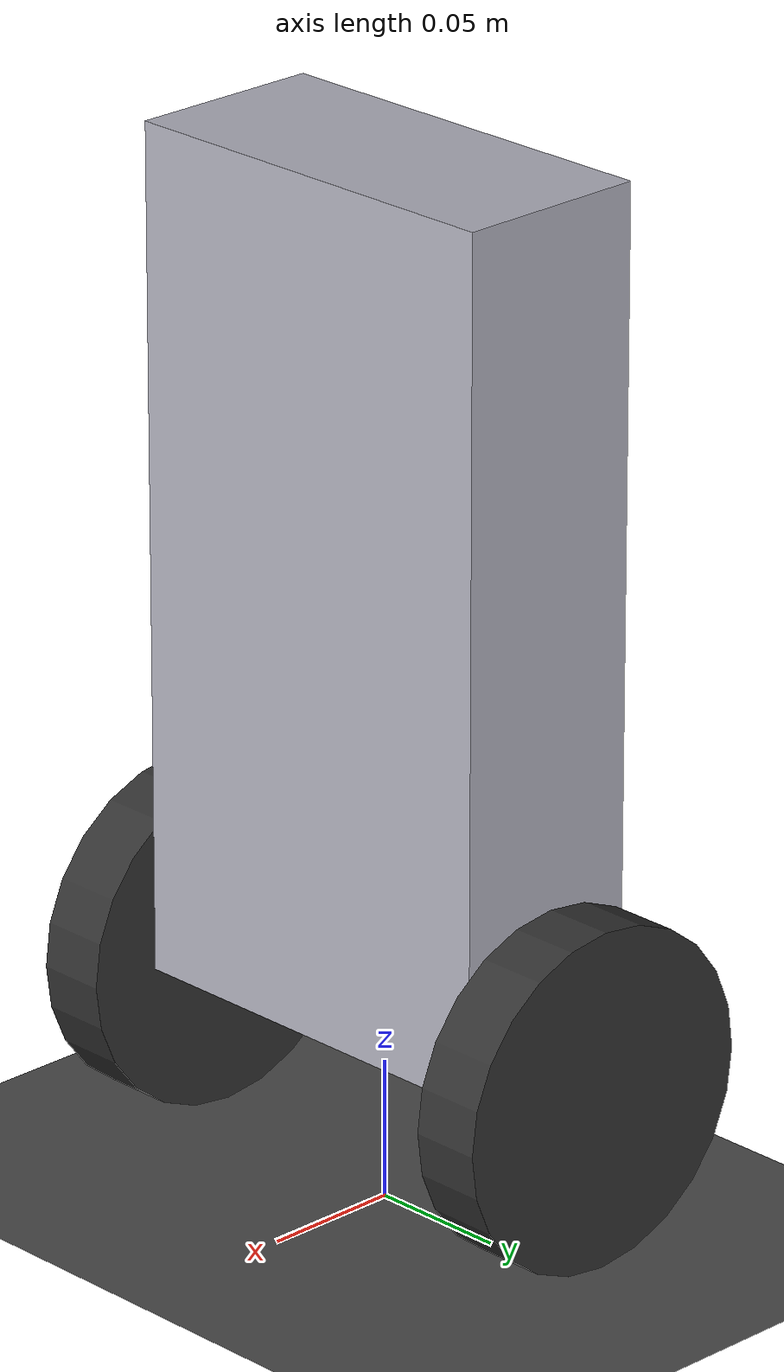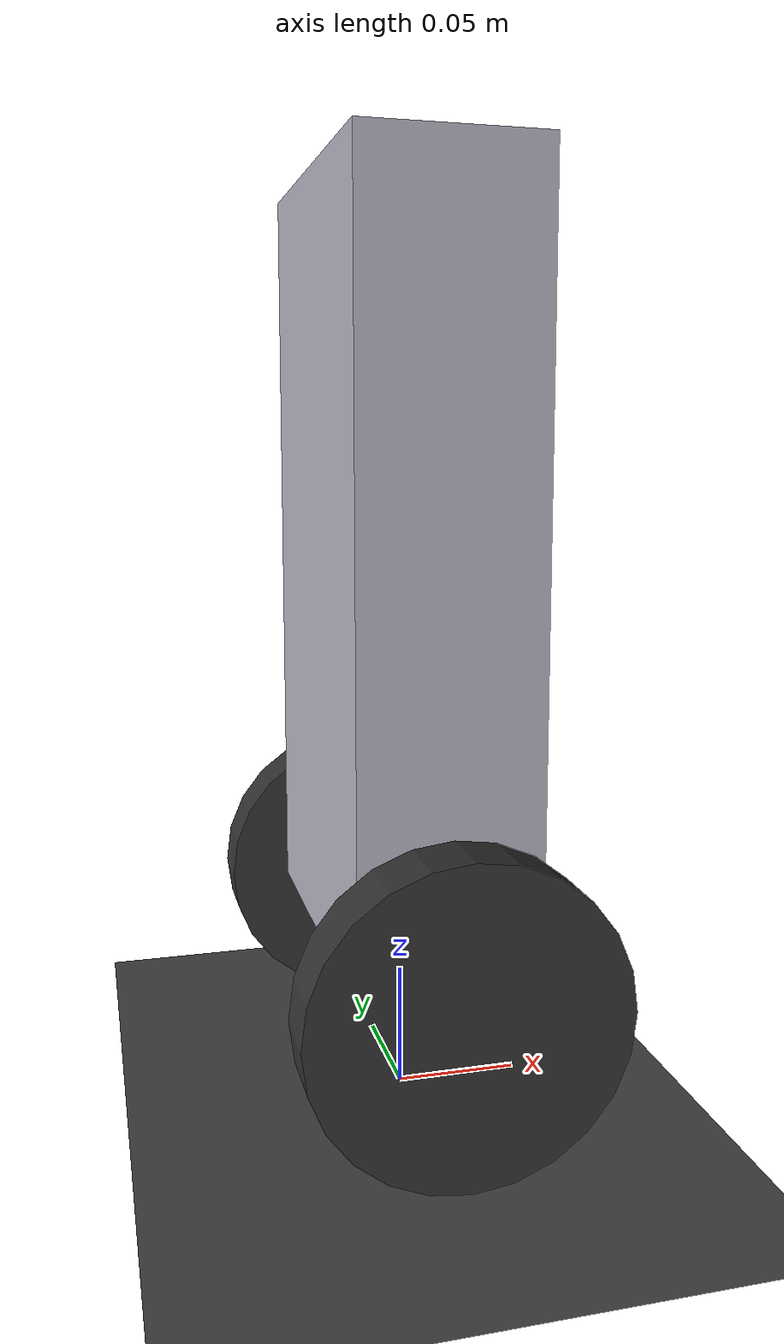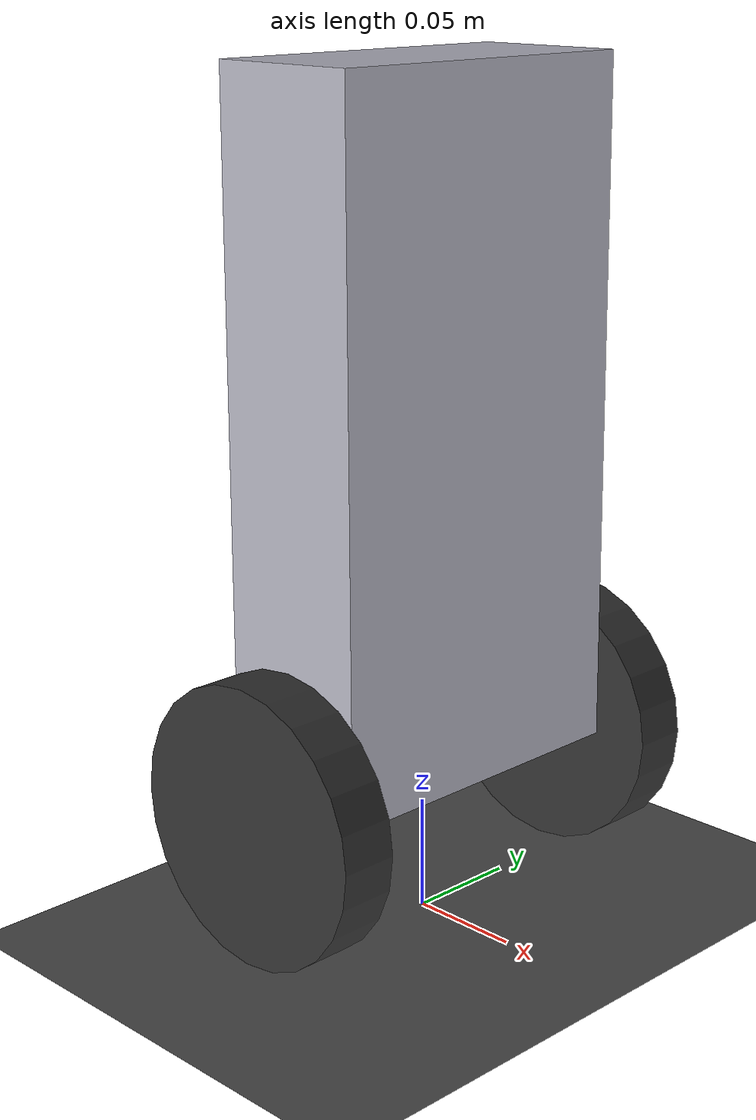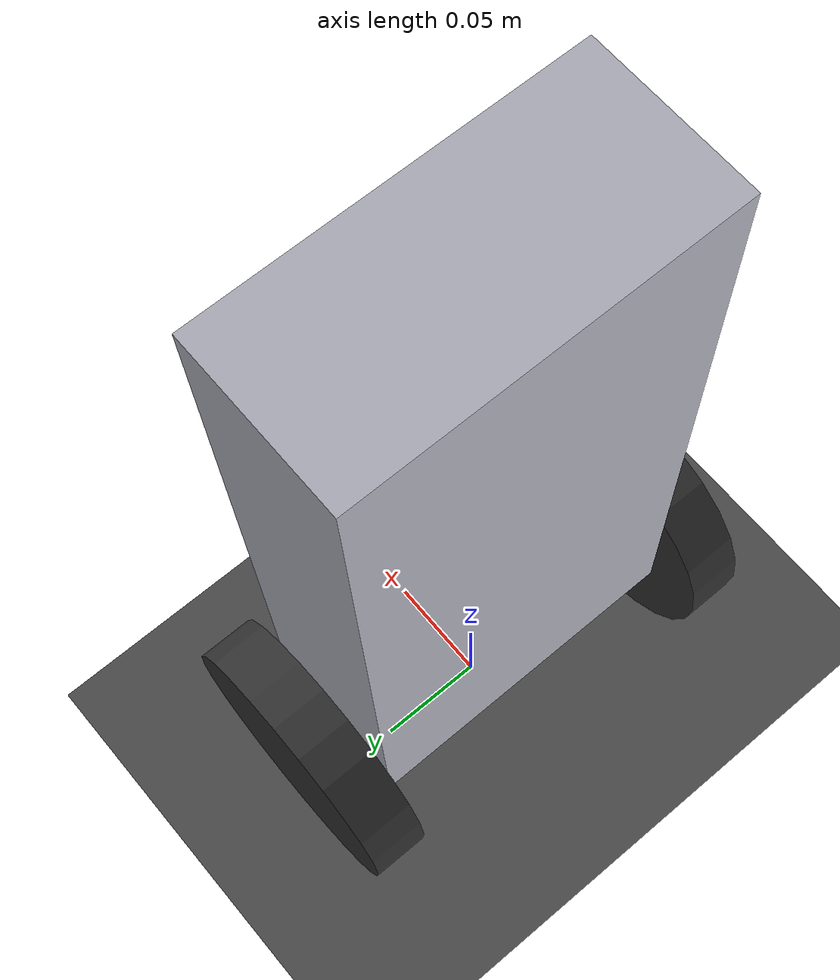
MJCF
<?xml version="1.0" encoding="utf-8"?>
<mujoco model="segby_v1">
  <compiler angle="radian" autolimits="true"/>

  <option timestep="0.002" gravity="0 0 -9.81"/>

  <default>
    <geom contype="1" conaffinity="1" friction="1 0.05 0.01"/>
  </default>

  <worldbody>
    <light pos="2 0 5" dir="0 0 -1" diffuse="1 1 1"/>
    <geom name="ground" type="plane" pos="0 0 0" size="20 20 0.1"
          rgba="0.30 0.30 0.30 1"/>

    <body name="chassis" pos="0 0 0.22">
      <freejoint name="root"/>
      <site name="imu" pos="0 0 0" size="0.01"/>

      <!-- chassis: 0.07 x 0.15 x 0.30 box, 0.8 kg (half-sizes below). -->
      <geom name="chassis_geom" type="box" size="0.035 0.075 0.15"
            mass="0.8" rgba="0.7 0.7 0.75 1"/>

      <!-- left wheel: hinge about +Y, cylinder r=0.06 w=0.025 (half-len 0.0125). -->
      <body name="wheel_l" pos="0 0.0895 -0.15">
        <joint name="wheel_l_joint" type="hinge" axis="0 1 0" damping="0.01"/>
        <geom name="wheel_l_geom" type="cylinder" size="0.06 0.0125"
              quat="0.7071068 0.7071068 0 0" mass="0.12" rgba="0.2 0.2 0.2 1"/>
      </body>

      <!-- right wheel: the mirror of the left. -->
      <body name="wheel_r" pos="0 -0.0895 -0.15">
        <joint name="wheel_r_joint" type="hinge" axis="0 1 0" damping="0.01"/>
        <geom name="wheel_r_geom" type="cylinder" size="0.06 0.0125"
              quat="0.7071068 0.7071068 0 0" mass="0.12" rgba="0.2 0.2 0.2 1"/>
      </body>
    </body>
  </worldbody>

  <actuator>
    <motor name="left_wheel_motor" joint="wheel_l_joint" gear="-1" ctrlrange="-1.0 1.0"/>
    <motor name="right_wheel_motor" joint="wheel_r_joint" gear="-1" ctrlrange="-1.0 1.0"/>
  </actuator>

  <sensor>
    <gyro name="imu_gyro" site="imu"/>
    <accelerometer name="imu_acc" site="imu"/>
    <framequat name="imu_quat" objtype="site" objname="imu"/>
    <jointpos name="wheel_l_pos" joint="wheel_l_joint"/>
    <jointvel name="wheel_l_vel" joint="wheel_l_joint"/>
    <jointpos name="wheel_r_pos" joint="wheel_r_joint"/>
    <jointvel name="wheel_r_vel" joint="wheel_r_joint"/>
  </sensor>
</mujoco>
